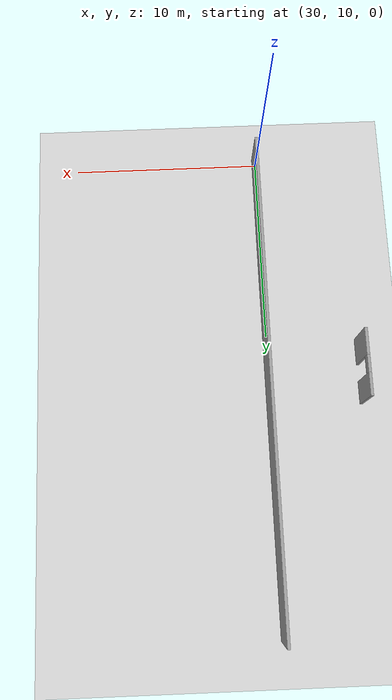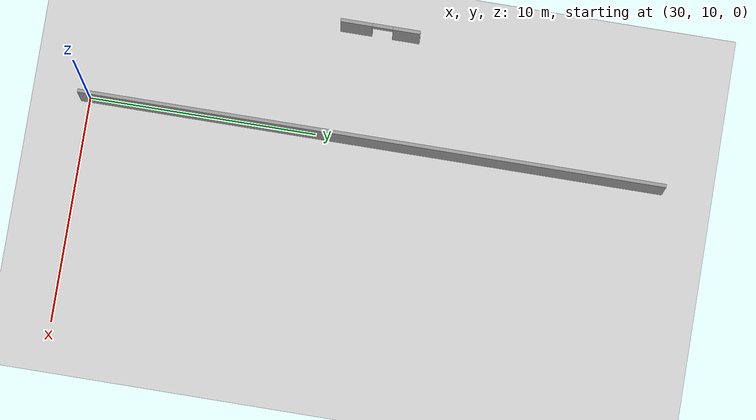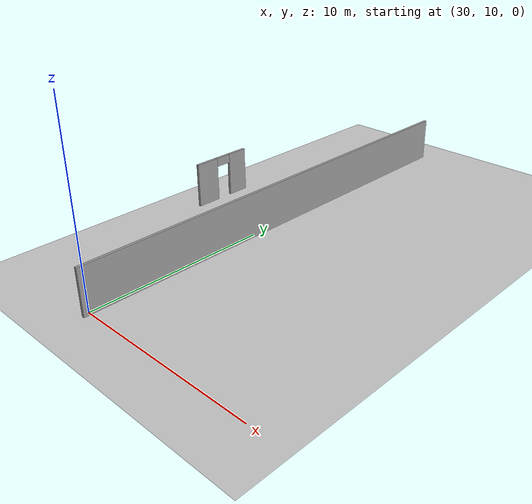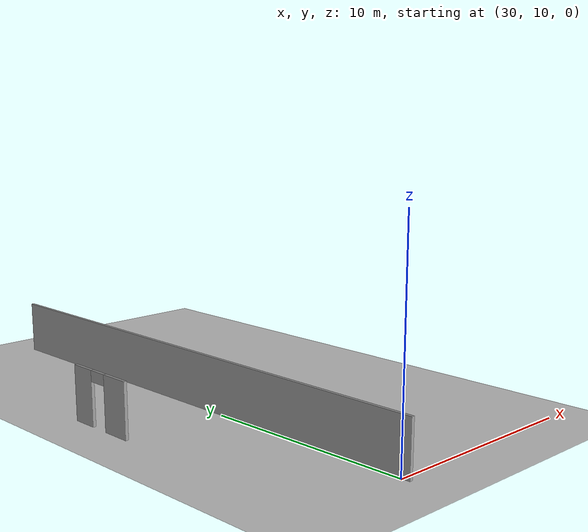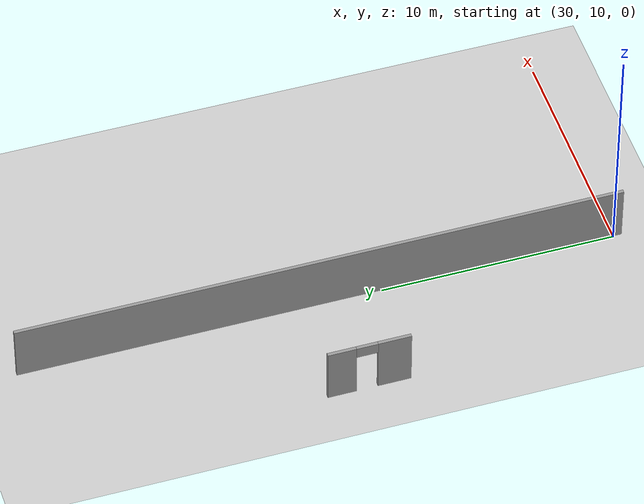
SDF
<sdf version="1.7">
 <world name="default">
  <model name="ground_plane">
   <static>1</static>
   <link name="link">
    <collision name="collision">
     <geometry><plane><normal>0 0 1</normal><size>100 100</size></plane></geometry>
     <surface>
      <contact><collide_bitmask>65535</collide_bitmask></contact>
      <friction><ode><mu>100</mu><mu2>50</mu2></ode></friction>
     </surface>
    </collision>
    <visual name="visual">
     <cast_shadows>0</cast_shadows>
     <geometry><plane><normal>0 0 1</normal><size>100 100</size></plane></geometry>
     <material>
      <script><uri>file://media/materials/scripts/gazebo.material</uri><name>Gazebo/Grey</name></script>
     </material>
    </visual>
   </link>
  </model>
  <model name="Level_1_with_doors">
   <link name="Wall_5">
    <pose>25.4175 0.086367 0 0 0 -1.5708</pose>
    <visual name="Wall_5_Visual">
     <pose>0 0 1.25 0 -0 0</pose>
     <geometry><box><size>25.75 0.15 2.5</size></box></geometry>
     <material>
      <script><uri>file://media/materials/scripts/gazebo.material</uri><name>Gazebo/Grey</name></script>
      <ambient>1 1 1 1</ambient>
      <shader type="pixel"/>
     </material>
     <meta><layer>0</layer></meta>
    </visual>
    <collision name="Wall_5_Collision">
     <pose>0 0 1.25 0 -0 0</pose>
     <geometry><box><size>25.75 0.15 2.5</size></box></geometry>
     <surface>
      <friction>
       <ode><mu>1</mu><mu2>1</mu2><fdir1>0 0 0</fdir1><slip1>0</slip1><slip2>0</slip2></ode>
       <torsional>
        <coefficient>1</coefficient>
        <patch_radius>0</patch_radius>
        <surface_radius>0</surface_radius>
        <use_patch_radius>1</use_patch_radius>
        <ode><slip>0</slip></ode>
       </torsional>
      </friction>
      <bounce><restitution_coefficient>0</restitution_coefficient><threshold>1e+06</threshold></bounce>
      <contact>
       <collide_without_contact>0</collide_without_contact>
       <collide_without_contact_bitmask>1</collide_without_contact_bitmask>
       <collide_bitmask>1</collide_bitmask>
       <ode>
        <soft_cfm>0</soft_cfm>
        <soft_erp>0.2</soft_erp>
        <kp>1e+13</kp>
        <kd>1</kd>
        <max_vel>0.01</max_vel>
        <min_depth>0</min_depth>
       </ode>
       <bullet>
        <split_impulse>1</split_impulse>
        <split_impulse_penetration_threshold>-0.01</split_impulse_penetration_threshold>
        <soft_cfm>0</soft_cfm>
        <soft_erp>0.2</soft_erp>
        <kp>1e+13</kp>
        <kd>1</kd>
       </bullet>
      </contact>
     </surface>
    </collision>
   </link>
   <link name="Wall_66">
    <pose>20.5236 -0.31846 0 0 -0 1.5708</pose>
    <visual name="Wall_66_Visual_1">
     <pose>1.14926 0 1.25 0 -0 0</pose>
     <geometry><box><size>1.20148 0.15 2.5</size></box></geometry>
     <material>
      <script><uri>file://media/materials/scripts/gazebo.material</uri><name>Gazebo/Grey</name></script>
      <ambient>1 1 1 1</ambient>
      <shader type="pixel"/>
     </material>
     <meta><layer>0</layer></meta>
    </visual>
    <visual name="Wall_66_Visual_2">
     <pose>0.098515 0 2.25 0 -0 0</pose>
     <geometry><box><size>0.9 0.15 0.5</size></box></geometry>
     <material>
      <script><uri>file://media/materials/scripts/gazebo.material</uri><name>Gazebo/Grey</name></script>
      <ambient>1 1 1 1</ambient>
      <shader type="pixel"/>
     </material>
     <meta><layer>0</layer></meta>
    </visual>
    <visual name="Wall_66_Visual_0">
     <pose>-1.05074 0 1.25 0 -0 0</pose>
     <geometry><box><size>1.39851 0.15 2.5</size></box></geometry>
     <material>
      <script><uri>file://media/materials/scripts/gazebo.material</uri><name>Gazebo/Grey</name></script>
      <ambient>1 1 1 1</ambient>
      <shader type="pixel"/>
     </material>
     <meta><layer>0</layer></meta>
    </visual>
    <collision name="Wall_66_Collision_1">
     <pose>1.14926 0 1.25 0 -0 0</pose>
     <geometry><box><size>1.20148 0.15 2.5</size></box></geometry>
     <surface>
      <friction>
       <ode><mu>1</mu><mu2>1</mu2><fdir1>0 0 0</fdir1><slip1>0</slip1><slip2>0</slip2></ode>
       <torsional>
        <coefficient>1</coefficient>
        <patch_radius>0</patch_radius>
        <surface_radius>0</surface_radius>
        <use_patch_radius>1</use_patch_radius>
        <ode><slip>0</slip></ode>
       </torsional>
      </friction>
      <bounce><restitution_coefficient>0</restitution_coefficient><threshold>1e+06</threshold></bounce>
      <contact>
       <collide_without_contact>0</collide_without_contact>
       <collide_without_contact_bitmask>1</collide_without_contact_bitmask>
       <collide_bitmask>1</collide_bitmask>
       <ode>
        <soft_cfm>0</soft_cfm>
        <soft_erp>0.2</soft_erp>
        <kp>1e+13</kp>
        <kd>1</kd>
        <max_vel>0.01</max_vel>
        <min_depth>0</min_depth>
       </ode>
       <bullet>
        <split_impulse>1</split_impulse>
        <split_impulse_penetration_threshold>-0.01</split_impulse_penetration_threshold>
        <soft_cfm>0</soft_cfm>
        <soft_erp>0.2</soft_erp>
        <kp>1e+13</kp>
        <kd>1</kd>
       </bullet>
      </contact>
     </surface>
    </collision>
    <collision name="Wall_66_Collision_0">
     <pose>-1.05074 0 1.25 0 -0 0</pose>
     <geometry><box><size>1.39851 0.15 2.5</size></box></geometry>
     <surface>
      <friction>
       <ode><mu>1</mu><mu2>1</mu2><fdir1>0 0 0</fdir1><slip1>0</slip1><slip2>0</slip2></ode>
       <torsional>
        <coefficient>1</coefficient>
        <patch_radius>0</patch_radius>
        <surface_radius>0</surface_radius>
        <use_patch_radius>1</use_patch_radius>
        <ode><slip>0</slip></ode>
       </torsional>
      </friction>
      <bounce><restitution_coefficient>0</restitution_coefficient><threshold>1e+06</threshold></bounce>
      <contact>
       <collide_without_contact>0</collide_without_contact>
       <collide_without_contact_bitmask>1</collide_without_contact_bitmask>
       <collide_bitmask>1</collide_bitmask>
       <ode>
        <soft_cfm>0</soft_cfm>
        <soft_erp>0.2</soft_erp>
        <kp>1e+13</kp>
        <kd>1</kd>
        <max_vel>0.01</max_vel>
        <min_depth>0</min_depth>
       </ode>
       <bullet>
        <split_impulse>1</split_impulse>
        <split_impulse_penetration_threshold>-0.01</split_impulse_penetration_threshold>
        <soft_cfm>0</soft_cfm>
        <soft_erp>0.2</soft_erp>
        <kp>1e+13</kp>
        <kd>1</kd>
       </bullet>
      </contact>
     </surface>
    </collision>
    <collision name="Wall_66_Collision_2">
     <pose>0.098515 0 2.25 0 -0 0</pose>
     <geometry><box><size>0.9 0.15 0.5</size></box></geometry>
     <surface>
      <friction>
       <ode><mu>1</mu><mu2>1</mu2><fdir1>0 0 0</fdir1><slip1>0</slip1><slip2>0</slip2></ode>
       <torsional>
        <coefficient>1</coefficient>
        <patch_radius>0</patch_radius>
        <surface_radius>0</surface_radius>
        <use_patch_radius>1</use_patch_radius>
        <ode><slip>0</slip></ode>
       </torsional>
      </friction>
      <bounce><restitution_coefficient>0</restitution_coefficient><threshold>1e+06</threshold></bounce>
      <contact>
       <collide_without_contact>0</collide_without_contact>
       <collide_without_contact_bitmask>1</collide_without_contact_bitmask>
       <collide_bitmask>1</collide_bitmask>
       <ode>
        <soft_cfm>0</soft_cfm>
        <soft_erp>0.2</soft_erp>
        <kp>1e+13</kp>
        <kd>1</kd>
        <max_vel>0.01</max_vel>
        <min_depth>0</min_depth>
       </ode>
       <bullet>
        <split_impulse>1</split_impulse>
        <split_impulse_penetration_threshold>-0.01</split_impulse_penetration_threshold>
        <soft_cfm>0</soft_cfm>
        <soft_erp>0.2</soft_erp>
        <kp>1e+13</kp>
        <kd>1</kd>
       </bullet>
      </contact>
     </surface>
    </collision>
   </link>
   <static>1</static>
   <pose>4.6984 22.4203 0 0 -0 0</pose>
  </model>
 </world>
</sdf>
